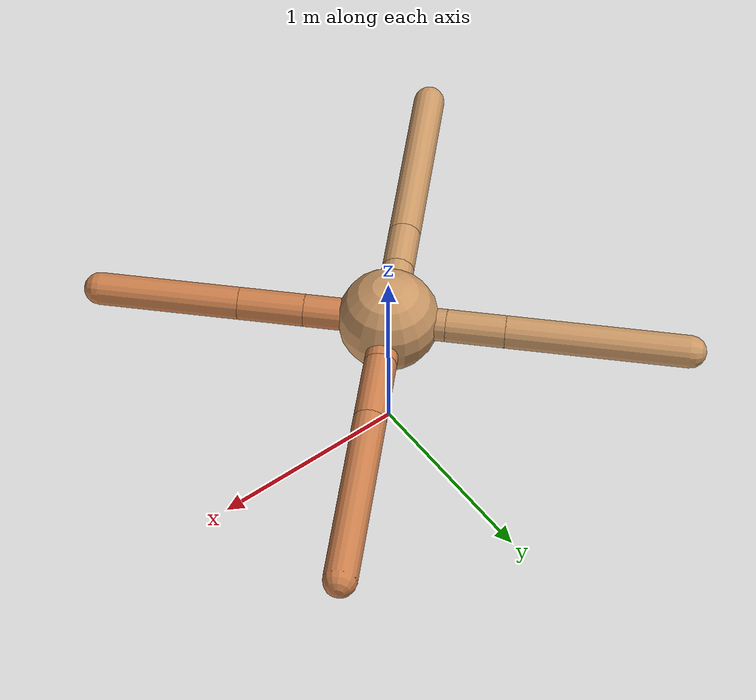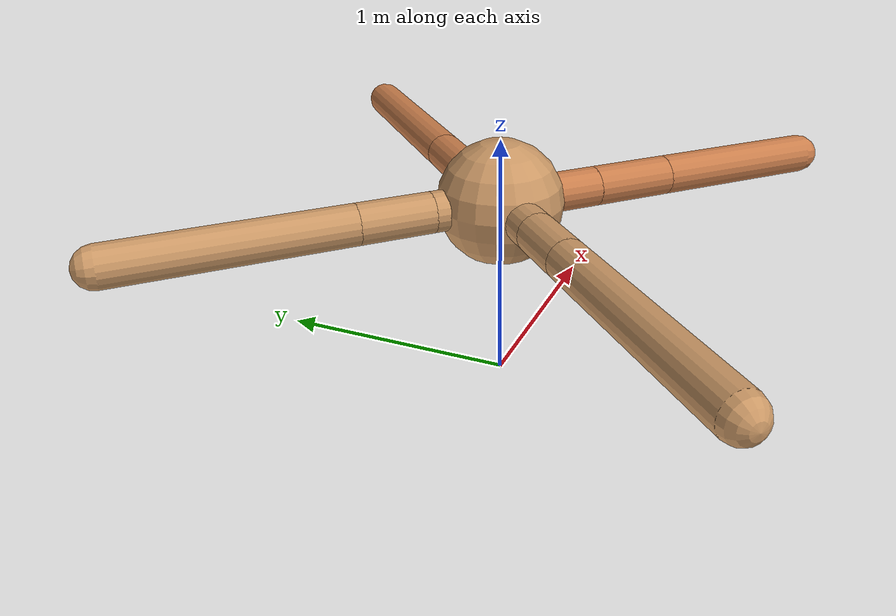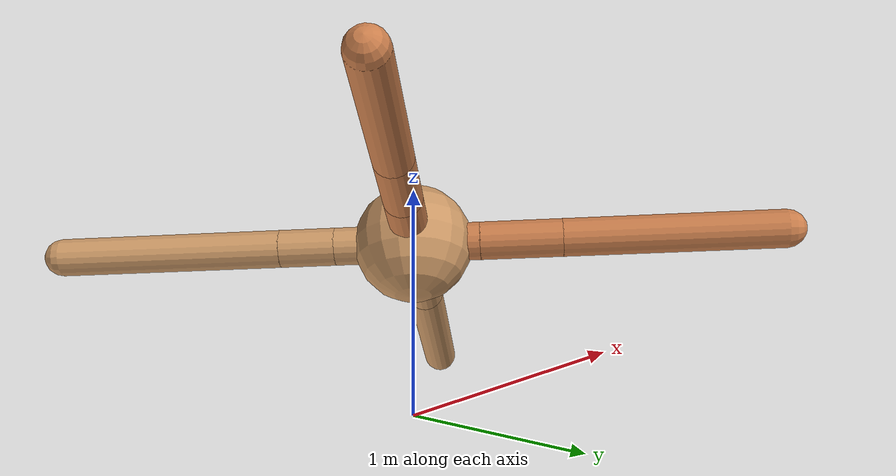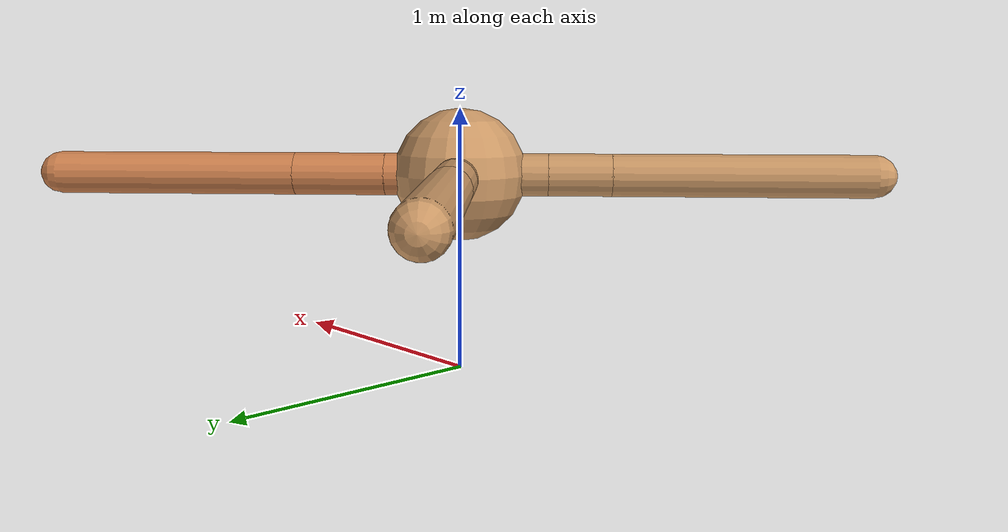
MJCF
<mujoco model="ant">
  <compiler angle="degree" coordinate="local" inertiafromgeom="true" />
  <option integrator="RK4" timestep="0.01" />
  <custom>
    <numeric data="0.0 0.0 0.55 1.0 0.0 0.0 0.0 0.0 1.0 0.0 -1.0 0.0 -1.0 0.0 1.0" name="init_qpos" />
  </custom>
  <default>
    <joint armature="1" damping="1" limited="true" />
    <geom conaffinity="0" condim="3" density="5.0" friction="1.5 0.1 0.1" margin="0.01" rgba="0.8 0.6 0.4 1" />
  </default>
  <worldbody>
    <body name="torso" pos="0 0 0.75">
      <geom name="torso_geom" pos="0 0 0" size="0.25" type="sphere" />

      <body name="front_left_leg" pos="0 0 0">
        <geom fromto="0.0 0.0 0.0 0.2 0.2 0.0" name="aux_1_geom" size="0.08" type="capsule" rgba=".8 .5 .3 1" />
        <body name="aux_1" pos="0.2 0.2 0.0">
          <joint axis="0 0 1" name="hip_1" pos="0.0 0.0 0.0" range="-40 40" type="hinge" />
          <geom fromto="0.0 0.0 0.0 0.2435970200035593 0.2435970200035593 0.0" name="left_leg_geom" size="0.08" type="capsule" rgba=".8 .5 .3 1" />
          <body pos="0.2435970200035593 0.2435970200035593 0.0" name="front_left_foot">
            <joint axis="-1 1 0" name="ankle_1" pos="0.0 0.0 0.0" range="30 100" type="hinge" />
            <geom fromto="0.0 0.0 0.0 0.6459080408562503 0.6459080408562503 0.0" name="left_ankle_geom" size="0.08" type="capsule" rgba=".8 .5 .3 1" />
          </body>
        </body>
      </body>
      <body name="front_right_leg" pos="0 0 0">
        <geom fromto="0.0 0.0 0.0 -0.2 0.2 0.0" name="aux_2_geom" size="0.08" type="capsule" />
        <body name="aux_2" pos="-0.2 0.2 0.0">
          <joint axis="0 0 1" name="hip_2" pos="0.0 0.0 0.0" range="-40 40" type="hinge" />
          <geom fromto="0.0 0.0 0.0 -0.2057533363351893 0.2057533363351893 0.0" name="right_leg_geom" size="0.08" type="capsule" />
          <body pos="-0.2057533363351893 0.2057533363351893 0.0" name="front_right_foot">
            <joint axis="1 1 0" name="ankle_2" pos="0.0 0.0 0.0" range="-100 -30" type="hinge" />
            <geom fromto="0.0 0.0 0.0 -0.632873981027237 0.632873981027237 0.0" name="right_ankle_geom" size="0.08" type="capsule" />
          </body>
        </body>
      </body>
      <body name="left_back_leg" pos="0 0 0">
        <geom fromto="0.0 0.0 0.0 -0.2338893033627589 -0.2338893033627589 0.0" name="aux_3_geom" size="0.08" type="capsule" />
        <body name="aux_3" pos="-0.2338893033627589 -0.2338893033627589 0.0">
          <joint axis="0 0 1" name="hip_3" pos="0.0 0.0 0.0" range="-40 40" type="hinge" />
          <geom fromto="0.0 0.0 0.0 -0.16751610443411621 -0.16751610443411621 0.0" name="back_leg_geom" size="0.08" type="capsule" />
          <body pos="-0.16751610443411621 -0.16751610443411621 0.0" name="left_back_foot">
            <joint axis="-1 1 0" name="ankle_3" pos="0.0 0.0 0.0" range="-100 -30" type="hinge" />
            <geom fromto="0.0 0.0 0.0 -0.6785863767714401 -0.6785863767714401 0.0" name="third_ankle_geom" size="0.08" type="capsule" />
          </body>
        </body>
      </body>
      <body name="right_back_leg" pos="0 0 0">
        <geom fromto="0.0 0.0 0.0 0.29316185198769007 -0.29316185198769007 0.0" name="aux_4_geom" size="0.08" type="capsule" rgba=".8 .5 .3 1" />
        <body name="aux_4" pos="0.29316185198769007 -0.29316185198769007 0.0">
          <joint axis="0 0 1" name="hip_4" pos="0.0 0.0 0.0" range="-40 40" type="hinge" />
          <geom fromto="0.0 0.0 0.0 0.2299896472469088 -0.2299896472469088 0.0" name="rightback_leg_geom" size="0.08" type="capsule" rgba=".8 .5 .3 1" />
          <body pos="0.2299896472469088 -0.2299896472469088 0.0" name="right_back_foot">
            <joint axis="1 1 0" name="ankle_4" pos="0.0 0.0 0.0" range="30 100" type="hinge" />
            <geom fromto="0.0 0.0 0.0 0.49155925831506525 -0.49155925831506525 0.0" name="fourth_ankle_geom" size="0.08" type="capsule" rgba=".8 .5 .3 1" />
          </body>
        </body>
      </body>
    </body>
  </worldbody>
  <actuator>
    <motor ctrllimited="true" ctrlrange="-1.0 1.0" joint="hip_4" gear="150" />
    <motor ctrllimited="true" ctrlrange="-1.0 1.0" joint="ankle_4" gear="150" />
    <motor ctrllimited="true" ctrlrange="-1.0 1.0" joint="hip_1" gear="150" />
    <motor ctrllimited="true" ctrlrange="-1.0 1.0" joint="ankle_1" gear="150" />
    <motor ctrllimited="true" ctrlrange="-1.0 1.0" joint="hip_2" gear="150" />
    <motor ctrllimited="true" ctrlrange="-1.0 1.0" joint="ankle_2" gear="150" />
    <motor ctrllimited="true" ctrlrange="-1.0 1.0" joint="hip_3" gear="150" />
    <motor ctrllimited="true" ctrlrange="-1.0 1.0" joint="ankle_3" gear="150" />
  </actuator>
</mujoco>
